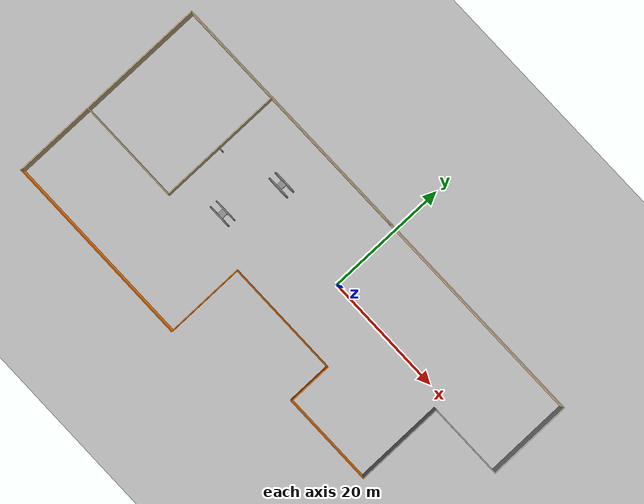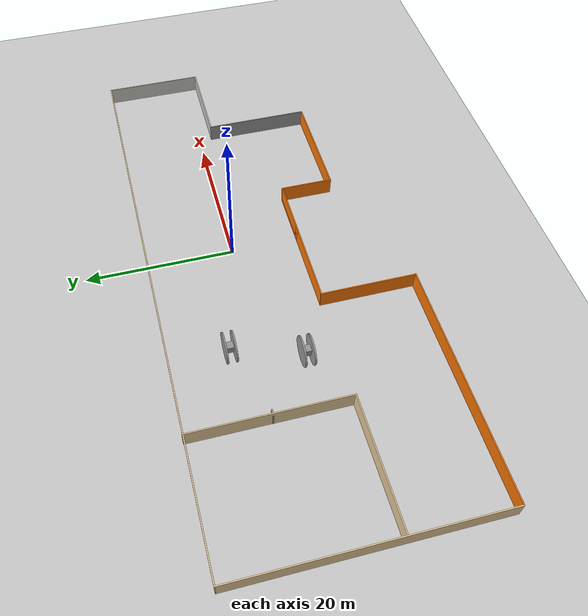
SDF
<sdf version="1.6">
 <world name="default">
  <plugin name="hello" filename="libwelcome.so"/>
  <light name="sun" type="directional">
   <pose>0 0 10 0 -0 0</pose>
   <diffuse>0.8 0.8 0.8 1</diffuse>
   <specular>0.2 0.2 0.2 1</specular>
   <attenuation>
    <range>1000</range>
    <constant>0.9</constant>
    <linear>0.01</linear>
    <quadratic>0.001</quadratic>
   </attenuation>
   <direction>-0.5 0.1 -0.9</direction>
  </light>
  <model name="ground_plane">
   <static>1</static>
   <link name="link">
    <collision name="collision">
     <geometry><plane><normal>0 0 1</normal><size>100 100</size></plane></geometry>
     <surface><friction><ode><mu>100</mu><mu2>50</mu2></ode></friction></surface>
    </collision>
    <visual name="visual">
     <cast_shadows>0</cast_shadows>
     <geometry><plane><normal>0 0 1</normal><size>100 100</size></plane></geometry>
     <material>
      <script><uri>file://media/materials/scripts/gazebo.material</uri><name>Gazebo/Grey</name></script>
     </material>
    </visual>
   </link>
  </model>
  <gravity>0 0 -9.8</gravity>
  <magnetic_field>6e-06 2.3e-05 -4.2e-05</magnetic_field>
  <atmosphere type="adiabatic"/>
  <physics name="default_physics" default="0" type="ode">
   <max_step_size>0.001</max_step_size>
   <real_time_factor>1</real_time_factor>
   <real_time_update_rate>1000</real_time_update_rate>
  </physics>
  <scene><ambient>0.4 0.4 0.4 1</ambient><background>0.7 0.7 0.7 1</background><shadows>1</shadows></scene>
  <spherical_coordinates>
   <surface_model>EARTH_WGS84</surface_model>
   <latitude_deg>0</latitude_deg>
   <longitude_deg>0</longitude_deg>
   <elevation>0</elevation>
   <heading_deg>0</heading_deg>
  </spherical_coordinates>
  <model name="Building">
   <pose>-4.0872 -5.12005 0 0 -0 0</pose>
   <link name="Door_0">
    <collision name="Door_0_Collision">
     <geometry><box><size>0.9 0.17 2</size></box></geometry>
     <pose>0 0 1 0 -0 0</pose>
    </collision>
    <visual name="Door_0_Visual">
     <pose>0 0 1 0 -0 0</pose>
     <geometry><box><size>0.9 0.17 2</size></box></geometry>
     <material>
      <script><uri>file://media/materials/scripts/gazebo.material</uri><name>Gazebo/Grey</name></script>
     </material>
    </visual>
    <pose>-21.8421 6.21903 0 0 -0 0</pose>
   </link>
   <link name="Wall_21">
    <collision name="Wall_21_Collision">
     <geometry><box><size>33.75 0.15 2.5</size></box></geometry>
     <pose>0 0 1.25 0 -0 0</pose>
    </collision>
    <visual name="Wall_21_Visual">
     <pose>0 0 1.25 0 -0 0</pose>
     <geometry><box><size>33.75 0.15 2.5</size></box></geometry>
     <material>
      <script><uri>file://media/materials/scripts/gazebo.material</uri><name>Gazebo/Grey</name></script>
      <ambient>0.921569 0.807843 0.615686 1</ambient>
     </material>
     <meta><layer>0</layer></meta>
    </visual>
    <pose>-39.2 -0.050046 0 0 0 -1.5708</pose>
   </link>
   <link name="Wall_22">
    <collision name="Wall_22_Collision">
     <geometry><box><size>32 0.15 2.5</size></box></geometry>
     <pose>0 0 1.25 0 -0 0</pose>
    </collision>
    <visual name="Wall_22_Visual">
     <pose>0 0 1.25 0 -0 0</pose>
     <geometry><box><size>32 0.15 2.5</size></box></geometry>
     <material>
      <script><uri>file://media/materials/scripts/gazebo.material</uri><name>Gazebo/Grey</name></script>
      <ambient>0.996078 0.47451 0.0196078 1</ambient>
     </material>
     <meta><layer>0</layer></meta>
    </visual>
    <pose>-23.275 -16.85 0 0 -0 0</pose>
   </link>
   <link name="Wall_23">
    <collision name="Wall_23_Collision">
     <geometry><box><size>13 0.15 2.5</size></box></geometry>
     <pose>0 0 1.25 0 -0 0</pose>
    </collision>
    <visual name="Wall_23_Visual">
     <pose>0 0 1.25 0 -0 0</pose>
     <geometry><box><size>13 0.15 2.5</size></box></geometry>
     <material>
      <script><uri>file://media/materials/scripts/gazebo.material</uri><name>Gazebo/Grey</name></script>
      <ambient>0.996078 0.47451 0.0196078 1</ambient>
     </material>
     <meta><layer>0</layer></meta>
    </visual>
    <pose>-7.35 -10.425 0 0 -0 1.5708</pose>
   </link>
   <link name="Wall_24">
    <pose>2.2 -4.00005 0 0 -0 0</pose>
    <visual name="Wall_24_Visual_0">
     <pose>-4.03379 0 1.25 0 -0 0</pose>
     <geometry><box><size>11.1824 0.15 2.5</size></box></geometry>
     <material>
      <script><uri>file://media/materials/scripts/gazebo.material</uri><name>Gazebo/Grey</name></script>
      <ambient>0.996078 0.47451 0.0196078 1</ambient>
     </material>
     <meta><layer>0</layer></meta>
    </visual>
    <collision name="Wall_24_Collision_0">
     <geometry><box><size>11.1824 0.15 2.5</size></box></geometry>
     <pose>-4.03379 0 1.25 0 -0 0</pose>
    </collision>
    <visual name="Wall_24_Visual_1">
     <pose>5.59121 0 0.25 0 -0 0</pose>
     <geometry><box><size>8.06759 0.15 0.5</size></box></geometry>
     <material>
      <script><uri>file://media/materials/scripts/gazebo.material</uri><name>Gazebo/Grey</name></script>
      <ambient>0.996078 0.47451 0.0196078 1</ambient>
     </material>
     <meta><layer>0</layer></meta>
    </visual>
    <collision name="Wall_24_Collision_1">
     <geometry><box><size>8.06759 0.15 0.5</size></box></geometry>
     <pose>5.59121 0 0.25 0 -0 0</pose>
    </collision>
    <visual name="Wall_24_Visual_2">
     <pose>5.99121 0 1.5 0 -0 0</pose>
     <geometry><box><size>7.26759 0.15 2</size></box></geometry>
     <material>
      <script><uri>file://media/materials/scripts/gazebo.material</uri><name>Gazebo/Grey</name></script>
      <ambient>0.996078 0.47451 0.0196078 1</ambient>
     </material>
     <meta><layer>0</layer></meta>
    </visual>
    <collision name="Wall_24_Collision_2">
     <geometry><box><size>7.26759 0.15 2</size></box></geometry>
     <pose>5.99121 0 1.5 0 -0 0</pose>
    </collision>
    <visual name="Wall_24_Visual_3">
     <pose>1.95741 0 1.9 0 -0 0</pose>
     <geometry><box><size>0.8 0.15 1.2</size></box></geometry>
     <material>
      <script><uri>file://media/materials/scripts/gazebo.material</uri><name>Gazebo/Grey</name></script>
      <ambient>0.996078 0.47451 0.0196078 1</ambient>
     </material>
     <meta><layer>0</layer></meta>
    </visual>
    <collision name="Wall_24_Collision_3">
     <geometry><box><size>0.8 0.15 1.2</size></box></geometry>
     <pose>1.95741 0 1.9 0 -0 0</pose>
    </collision>
   </link>
   <link name="Wall_25">
    <collision name="Wall_25_Collision">
     <geometry><box><size>7.25 0.15 2.5</size></box></geometry>
     <pose>0 0 1.25 0 -0 0</pose>
    </collision>
    <visual name="Wall_25_Visual">
     <pose>0 0 1.25 0 -0 0</pose>
     <geometry><box><size>7.25 0.15 2.5</size></box></geometry>
     <material>
      <script><uri>file://media/materials/scripts/gazebo.material</uri><name>Gazebo/Grey</name></script>
      <ambient>0.996078 0.47451 0.0196078 1</ambient>
     </material>
     <meta><layer>0</layer></meta>
    </visual>
    <pose>11.75 -7.55005 0 0 0 -1.5708</pose>
   </link>
   <link name="Wall_26">
    <collision name="Wall_26_Collision">
     <geometry><box><size>15.25 0.15 2.5</size></box></geometry>
     <pose>0 0 1.25 0 -0 0</pose>
    </collision>
    <visual name="Wall_26_Visual">
     <pose>0 0 1.25 0 -0 0</pose>
     <geometry><box><size>15.25 0.15 2.5</size></box></geometry>
     <material>
      <script><uri>file://media/materials/scripts/gazebo.material</uri><name>Gazebo/Grey</name></script>
      <ambient>0.996078 0.47451 0.0196078 1</ambient>
     </material>
     <meta><layer>0</layer></meta>
    </visual>
    <pose>19.3 -11.1 0 0 -0 0</pose>
   </link>
   <link name="Wall_27">
    <collision name="Wall_27_Collision">
     <geometry><box><size>14.5 0.15 2.5</size></box></geometry>
     <pose>0 0 1.25 0 -0 0</pose>
    </collision>
    <visual name="Wall_27_Visual">
     <pose>0 0 1.25 0 -0 0</pose>
     <geometry><box><size>14.5 0.15 2.5</size></box></geometry>
     <material>
      <script><uri>file://media/materials/scripts/gazebo.material</uri><name>Gazebo/Grey</name></script>
      <ambient>1 1 1 1</ambient>
     </material>
     <meta><layer>0</layer></meta>
    </visual>
    <pose>26.85 -3.92505 0 0 -0 1.5708</pose>
   </link>
   <link name="Wall_28">
    <collision name="Wall_28_Collision">
     <geometry><box><size>12.5 0.15 2.5</size></box></geometry>
     <pose>0 0 1.25 0 -0 0</pose>
    </collision>
    <visual name="Wall_28_Visual">
     <pose>0 0 1.25 0 -0 0</pose>
     <geometry><box><size>12.5 0.15 2.5</size></box></geometry>
     <material>
      <script><uri>file://media/materials/scripts/gazebo.material</uri><name>Gazebo/CeilingTiled</name></script>
      <ambient>1 1 1 1</ambient>
     </material>
     <meta><layer>0</layer></meta>
    </visual>
    <pose>33.025 3.24995 0 0 -0 0</pose>
   </link>
   <link name="Wall_29">
    <collision name="Wall_29_Collision">
     <geometry><box><size>13.75 0.15 2.5</size></box></geometry>
     <pose>0 0 1.25 0 -0 0</pose>
    </collision>
    <visual name="Wall_29_Visual">
     <pose>0 0 1.25 0 -0 0</pose>
     <geometry><box><size>13.75 0.15 2.5</size></box></geometry>
     <material>
      <script><uri>file://media/materials/scripts/gazebo.material</uri><name>Gazebo/CeilingTiled</name></script>
      <ambient>1 1 1 1</ambient>
     </material>
     <meta><layer>0</layer></meta>
    </visual>
    <pose>39.2 10.05 0 0 -0 1.5708</pose>
   </link>
   <link name="Wall_30">
    <pose>0 16.8 0 0 0 -3.14032</pose>
    <visual name="Wall_30_Visual_0">
     <pose>-21.194 0 1.25 0 -0 0</pose>
     <geometry><box><size>36.162 0.15 2.5</size></box></geometry>
     <material>
      <script><uri>file://media/materials/scripts/gazebo.material</uri><name>Gazebo/Grey</name></script>
      <ambient>0.921569 0.807843 0.615686 1</ambient>
     </material>
     <meta><layer>0</layer></meta>
    </visual>
    <collision name="Wall_30_Collision_0">
     <geometry><box><size>36.162 0.15 2.5</size></box></geometry>
     <pose>-21.194 0 1.25 0 -0 0</pose>
    </collision>
    <visual name="Wall_30_Visual_1">
     <pose>18.081 0 0.25 0 -0 0</pose>
     <geometry><box><size>42.388 0.15 0.5</size></box></geometry>
     <material>
      <script><uri>file://media/materials/scripts/gazebo.material</uri><name>Gazebo/Grey</name></script>
      <ambient>0.921569 0.807843 0.615686 1</ambient>
     </material>
     <meta><layer>0</layer></meta>
    </visual>
    <collision name="Wall_30_Collision_1">
     <geometry><box><size>42.388 0.15 0.5</size></box></geometry>
     <pose>18.081 0 0.25 0 -0 0</pose>
    </collision>
    <visual name="Wall_30_Visual_2">
     <pose>18.481 0 1.5 0 -0 0</pose>
     <geometry><box><size>41.588 0.15 2</size></box></geometry>
     <material>
      <script><uri>file://media/materials/scripts/gazebo.material</uri><name>Gazebo/Grey</name></script>
      <ambient>0.921569 0.807843 0.615686 1</ambient>
     </material>
     <meta><layer>0</layer></meta>
    </visual>
    <collision name="Wall_30_Collision_2">
     <geometry><box><size>41.588 0.15 2</size></box></geometry>
     <pose>18.481 0 1.5 0 -0 0</pose>
    </collision>
    <visual name="Wall_30_Visual_3">
     <pose>-2.71301 0 1.9 0 -0 0</pose>
     <geometry><box><size>0.8 0.15 1.2</size></box></geometry>
     <material>
      <script><uri>file://media/materials/scripts/gazebo.material</uri><name>Gazebo/Grey</name></script>
      <ambient>0.921569 0.807843 0.615686 1</ambient>
     </material>
     <meta><layer>0</layer></meta>
    </visual>
    <collision name="Wall_30_Collision_3">
     <geometry><box><size>0.8 0.15 1.2</size></box></geometry>
     <pose>-2.71301 0 1.9 0 -0 0</pose>
    </collision>
   </link>
   <link name="Wall_32">
    <collision name="Wall_32_Collision">
     <geometry><box><size>20.75 0.15 2.5</size></box></geometry>
     <pose>0 0 1.25 0 -0 0</pose>
    </collision>
    <visual name="Wall_32_Visual">
     <pose>0 0 1.25 0 -0 0</pose>
     <geometry><box><size>20.75 0.15 2.5</size></box></geometry>
     <material>
      <script><uri>file://media/materials/scripts/gazebo.material</uri><name>Gazebo/Grey</name></script>
      <ambient>0.921569 0.807843 0.615686 1</ambient>
     </material>
     <meta><layer>0</layer></meta>
    </visual>
    <pose>-22.186 6.54567 0 0 -0 1.5708</pose>
   </link>
   <link name="Wall_34">
    <collision name="Wall_34_Collision">
     <geometry><box><size>17 0.15 2.5</size></box></geometry>
     <pose>0 0 1.25 0 -0 0</pose>
    </collision>
    <visual name="Wall_34_Visual">
     <pose>0 0 1.25 0 -0 0</pose>
     <geometry><box><size>17 0.15 2.5</size></box></geometry>
     <material>
      <script><uri>file://media/materials/scripts/gazebo.material</uri><name>Gazebo/Grey</name></script>
      <ambient>0.921569 0.807843 0.615686 1</ambient>
     </material>
     <meta><layer>0</layer></meta>
    </visual>
    <pose>-30.611 -3.75433 0 0 -0 3.14159</pose>
   </link>
   <static>1</static>
  </model>
  <model name="Robot">
   <link name="link_0">
    <pose>1e-06 0 0 0 -0 0</pose>
    <inertial>
     <mass>1</mass>
     <inertia>
      <ixx>0.166667</ixx>
      <ixy>0</ixy>
      <ixz>0</ixz>
      <iyy>0.166667</iyy>
      <iyz>0</iyz>
      <izz>0.166667</izz>
     </inertia>
    </inertial>
    <visual name="visual">
     <geometry><box><size>1 1 1</size></box></geometry>
     <material>
      <lighting>1</lighting>
      <script><uri>file://media/materials/scripts/gazebo.material</uri><name>Gazebo/Grey</name></script>
      <shader type="pixel"><normal_map>__default__</normal_map></shader>
      <ambient>0.3 0.3 0.3 1</ambient>
      <diffuse>0.7 0.7 0.7 1</diffuse>
      <specular>0.01 0.01 0.01 1</specular>
      <emissive>0 0 0 1</emissive>
     </material>
    </visual>
    <collision name="collision">
     <geometry><box><size>1 1 1</size></box></geometry>
     <surface>
      <friction>
       <ode><mu>1</mu><mu2>1</mu2><fdir1>0 0 0</fdir1><slip1>0</slip1><slip2>0</slip2></ode>
       <torsional>
        <coefficient>1</coefficient>
        <patch_radius>0</patch_radius>
        <surface_radius>0</surface_radius>
        <use_patch_radius>1</use_patch_radius>
        <ode><slip>0</slip></ode>
       </torsional>
      </friction>
      <bounce><restitution_coefficient>0</restitution_coefficient><threshold>1e+06</threshold></bounce>
      <contact>
       <collide_without_contact>0</collide_without_contact>
       <collide_without_contact_bitmask>1</collide_without_contact_bitmask>
       <collide_bitmask>1</collide_bitmask>
       <ode>
        <soft_cfm>0</soft_cfm>
        <soft_erp>0.2</soft_erp>
        <kp>1e+13</kp>
        <kd>1</kd>
        <max_vel>0.01</max_vel>
        <min_depth>0</min_depth>
       </ode>
       <bullet>
        <split_impulse>1</split_impulse>
        <split_impulse_penetration_threshold>-0.01</split_impulse_penetration_threshold>
        <soft_cfm>0</soft_cfm>
        <soft_erp>0.2</soft_erp>
        <kp>1e+13</kp>
        <kd>1</kd>
       </bullet>
      </contact>
     </surface>
    </collision>
   </link>
   <link name="link_2">
    <pose>1e-06 -0.600193 0 1.5707 -0 0</pose>
    <inertial>
     <mass>1</mass>
     <inertia><ixx>0.145833</ixx><ixy>0</ixy><ixz>0</ixz><iyy>0.145833</iyy><iyz>0</iyz><izz>0.125</izz></inertia>
    </inertial>
    <visual name="visual">
     <geometry><cylinder><radius>2</radius><length>0.2</length></cylinder></geometry>
     <material>
      <lighting>1</lighting>
      <script><uri>file://media/materials/scripts/gazebo.material</uri><name>Gazebo/Grey</name></script>
      <shader type="pixel"><normal_map>__default__</normal_map></shader>
      <ambient>0.3 0.3 0.3 1</ambient>
      <diffuse>0.7 0.7 0.7 1</diffuse>
      <specular>0.01 0.01 0.01 1</specular>
      <emissive>0 0 0 1</emissive>
     </material>
    </visual>
    <collision name="collision">
     <geometry><cylinder><radius>2</radius><length>0.2</length></cylinder></geometry>
     <surface>
      <friction>
       <ode><mu>1</mu><mu2>1</mu2><fdir1>0 0 0</fdir1><slip1>0</slip1><slip2>0</slip2></ode>
       <torsional>
        <coefficient>1</coefficient>
        <patch_radius>0</patch_radius>
        <surface_radius>0</surface_radius>
        <use_patch_radius>1</use_patch_radius>
        <ode><slip>0</slip></ode>
       </torsional>
      </friction>
      <bounce><restitution_coefficient>0</restitution_coefficient><threshold>1e+06</threshold></bounce>
      <contact>
       <collide_without_contact>0</collide_without_contact>
       <collide_without_contact_bitmask>1</collide_without_contact_bitmask>
       <collide_bitmask>1</collide_bitmask>
       <ode>
        <soft_cfm>0</soft_cfm>
        <soft_erp>0.2</soft_erp>
        <kp>1e+13</kp>
        <kd>1</kd>
        <max_vel>0.01</max_vel>
        <min_depth>0</min_depth>
       </ode>
       <bullet>
        <split_impulse>1</split_impulse>
        <split_impulse_penetration_threshold>-0.01</split_impulse_penetration_threshold>
        <soft_cfm>0</soft_cfm>
        <soft_erp>0.2</soft_erp>
        <kp>1e+13</kp>
        <kd>1</kd>
       </bullet>
      </contact>
     </surface>
    </collision>
   </link>
   <link name="link_2_clone">
    <pose>1e-06 0.600193 0 1.5707 -0 0</pose>
    <inertial>
     <mass>1</mass>
     <inertia><ixx>0.145833</ixx><ixy>0</ixy><ixz>0</ixz><iyy>0.145833</iyy><iyz>0</iyz><izz>0.125</izz></inertia>
    </inertial>
    <visual name="visual">
     <geometry><cylinder><radius>2</radius><length>0.2</length></cylinder></geometry>
     <material>
      <lighting>1</lighting>
      <script><uri>file://media/materials/scripts/gazebo.material</uri><name>Gazebo/Grey</name></script>
      <shader type="pixel"><normal_map>__default__</normal_map></shader>
      <ambient>0.3 0.3 0.3 1</ambient>
      <diffuse>0.7 0.7 0.7 1</diffuse>
      <specular>0.01 0.01 0.01 1</specular>
      <emissive>0 0 0 1</emissive>
     </material>
    </visual>
    <collision name="collision">
     <geometry><cylinder><radius>2</radius><length>0.2</length></cylinder></geometry>
     <surface>
      <friction>
       <ode><mu>1</mu><mu2>1</mu2><fdir1>0 0 0</fdir1><slip1>0</slip1><slip2>0</slip2></ode>
       <torsional>
        <coefficient>1</coefficient>
        <patch_radius>0</patch_radius>
        <surface_radius>0</surface_radius>
        <use_patch_radius>1</use_patch_radius>
        <ode><slip>0</slip></ode>
       </torsional>
      </friction>
      <bounce><restitution_coefficient>0</restitution_coefficient><threshold>1e+06</threshold></bounce>
      <contact>
       <collide_without_contact>0</collide_without_contact>
       <collide_without_contact_bitmask>1</collide_without_contact_bitmask>
       <collide_bitmask>1</collide_bitmask>
       <ode>
        <soft_cfm>0</soft_cfm>
        <soft_erp>0.2</soft_erp>
        <kp>1e+13</kp>
        <kd>1</kd>
        <max_vel>0.01</max_vel>
        <min_depth>0</min_depth>
       </ode>
       <bullet>
        <split_impulse>1</split_impulse>
        <split_impulse_penetration_threshold>-0.01</split_impulse_penetration_threshold>
        <soft_cfm>0</soft_cfm>
        <soft_erp>0.2</soft_erp>
        <kp>1e+13</kp>
        <kd>1</kd>
       </bullet>
      </contact>
     </surface>
    </collision>
   </link>
   <joint name="link_0_JOINT_0" type="revolute">
    <parent>link_0</parent>
    <child>link_2</child>
    <axis>
     <xyz>0 0 1</xyz>
     <use_parent_model_frame>0</use_parent_model_frame>
     <limit>
      <lower>-1.79769e+308</lower>
      <upper>1.79769e+308</upper>
      <effort>-1</effort>
      <velocity>-1</velocity>
     </limit>
     <dynamics>
      <spring_reference>0</spring_reference>
      <spring_stiffness>0</spring_stiffness>
      <damping>0</damping>
     </dynamics>
    </axis>
    <physics>
     <ode><limit><cfm>0</cfm><erp>0.2</erp></limit><suspension><cfm>0</cfm><erp>0.2</erp></suspension></ode>
    </physics>
   </joint>
   <joint name="link_0_JOINT_1" type="revolute">
    <parent>link_0</parent>
    <child>link_2_clone</child>
    <axis>
     <xyz>0 0 1</xyz>
     <use_parent_model_frame>0</use_parent_model_frame>
     <limit>
      <lower>-1.79769e+308</lower>
      <upper>1.79769e+308</upper>
      <effort>-1</effort>
      <velocity>-1</velocity>
     </limit>
     <dynamics>
      <spring_reference>0</spring_reference>
      <spring_stiffness>0</spring_stiffness>
      <damping>0</damping>
     </dynamics>
    </axis>
    <physics>
     <ode><limit><cfm>0</cfm><erp>0.2</erp></limit><suspension><cfm>0</cfm><erp>0.2</erp></suspension></ode>
    </physics>
   </joint>
   <static>0</static>
   <pose>-18.8464 -5.05977 2.00001 1e-06 -0 0</pose>
  </model>
  <model name="Robot_clone">
   <link name="link_0">
    <pose>1e-06 0 0 0 -0 0</pose>
    <inertial>
     <mass>1</mass>
     <inertia>
      <ixx>0.166667</ixx>
      <ixy>0</ixy>
      <ixz>0</ixz>
      <iyy>0.166667</iyy>
      <iyz>0</iyz>
      <izz>0.166667</izz>
     </inertia>
    </inertial>
    <visual name="visual">
     <geometry><box><size>1 1 1</size></box></geometry>
     <material>
      <lighting>1</lighting>
      <script><uri>file://media/materials/scripts/gazebo.material</uri><name>Gazebo/Grey</name></script>
      <shader type="pixel"><normal_map>__default__</normal_map></shader>
      <ambient>0.3 0.3 0.3 1</ambient>
      <diffuse>0.7 0.7 0.7 1</diffuse>
      <specular>0.01 0.01 0.01 1</specular>
      <emissive>0 0 0 1</emissive>
     </material>
    </visual>
    <collision name="collision">
     <geometry><box><size>1 1 1</size></box></geometry>
     <surface>
      <friction>
       <ode><mu>1</mu><mu2>1</mu2><fdir1>0 0 0</fdir1><slip1>0</slip1><slip2>0</slip2></ode>
       <torsional>
        <coefficient>1</coefficient>
        <patch_radius>0</patch_radius>
        <surface_radius>0</surface_radius>
        <use_patch_radius>1</use_patch_radius>
        <ode><slip>0</slip></ode>
       </torsional>
      </friction>
      <bounce><restitution_coefficient>0</restitution_coefficient><threshold>1e+06</threshold></bounce>
      <contact>
       <collide_without_contact>0</collide_without_contact>
       <collide_without_contact_bitmask>1</collide_without_contact_bitmask>
       <collide_bitmask>1</collide_bitmask>
       <ode>
        <soft_cfm>0</soft_cfm>
        <soft_erp>0.2</soft_erp>
        <kp>1e+13</kp>
        <kd>1</kd>
        <max_vel>0.01</max_vel>
        <min_depth>0</min_depth>
       </ode>
       <bullet>
        <split_impulse>1</split_impulse>
        <split_impulse_penetration_threshold>-0.01</split_impulse_penetration_threshold>
        <soft_cfm>0</soft_cfm>
        <soft_erp>0.2</soft_erp>
        <kp>1e+13</kp>
        <kd>1</kd>
       </bullet>
      </contact>
     </surface>
    </collision>
   </link>
   <link name="link_2">
    <pose>1e-06 -0.600193 0 1.5707 -0 0</pose>
    <inertial>
     <mass>1</mass>
     <inertia><ixx>0.145833</ixx><ixy>0</ixy><ixz>0</ixz><iyy>0.145833</iyy><iyz>0</iyz><izz>0.125</izz></inertia>
    </inertial>
    <visual name="visual">
     <geometry><cylinder><radius>2</radius><length>0.2</length></cylinder></geometry>
     <material>
      <lighting>1</lighting>
      <script><uri>file://media/materials/scripts/gazebo.material</uri><name>Gazebo/Grey</name></script>
      <shader type="pixel"><normal_map>__default__</normal_map></shader>
      <ambient>0.3 0.3 0.3 1</ambient>
      <diffuse>0.7 0.7 0.7 1</diffuse>
      <specular>0.01 0.01 0.01 1</specular>
      <emissive>0 0 0 1</emissive>
     </material>
    </visual>
    <collision name="collision">
     <geometry><cylinder><radius>2</radius><length>0.2</length></cylinder></geometry>
     <surface>
      <friction>
       <ode><mu>1</mu><mu2>1</mu2><fdir1>0 0 0</fdir1><slip1>0</slip1><slip2>0</slip2></ode>
       <torsional>
        <coefficient>1</coefficient>
        <patch_radius>0</patch_radius>
        <surface_radius>0</surface_radius>
        <use_patch_radius>1</use_patch_radius>
        <ode><slip>0</slip></ode>
       </torsional>
      </friction>
      <bounce><restitution_coefficient>0</restitution_coefficient><threshold>1e+06</threshold></bounce>
      <contact>
       <collide_without_contact>0</collide_without_contact>
       <collide_without_contact_bitmask>1</collide_without_contact_bitmask>
       <collide_bitmask>1</collide_bitmask>
       <ode>
        <soft_cfm>0</soft_cfm>
        <soft_erp>0.2</soft_erp>
        <kp>1e+13</kp>
        <kd>1</kd>
        <max_vel>0.01</max_vel>
        <min_depth>0</min_depth>
       </ode>
       <bullet>
        <split_impulse>1</split_impulse>
        <split_impulse_penetration_threshold>-0.01</split_impulse_penetration_threshold>
        <soft_cfm>0</soft_cfm>
        <soft_erp>0.2</soft_erp>
        <kp>1e+13</kp>
        <kd>1</kd>
       </bullet>
      </contact>
     </surface>
    </collision>
   </link>
   <link name="link_2_clone">
    <pose>1e-06 0.600193 0 1.5707 -0 0</pose>
    <inertial>
     <mass>1</mass>
     <inertia><ixx>0.145833</ixx><ixy>0</ixy><ixz>0</ixz><iyy>0.145833</iyy><iyz>0</iyz><izz>0.125</izz></inertia>
    </inertial>
    <visual name="visual">
     <geometry><cylinder><radius>2</radius><length>0.2</length></cylinder></geometry>
     <material>
      <lighting>1</lighting>
      <script><uri>file://media/materials/scripts/gazebo.material</uri><name>Gazebo/Grey</name></script>
      <shader type="pixel"><normal_map>__default__</normal_map></shader>
      <ambient>0.3 0.3 0.3 1</ambient>
      <diffuse>0.7 0.7 0.7 1</diffuse>
      <specular>0.01 0.01 0.01 1</specular>
      <emissive>0 0 0 1</emissive>
     </material>
    </visual>
    <collision name="collision">
     <geometry><cylinder><radius>2</radius><length>0.2</length></cylinder></geometry>
     <surface>
      <friction>
       <ode><mu>1</mu><mu2>1</mu2><fdir1>0 0 0</fdir1><slip1>0</slip1><slip2>0</slip2></ode>
       <torsional>
        <coefficient>1</coefficient>
        <patch_radius>0</patch_radius>
        <surface_radius>0</surface_radius>
        <use_patch_radius>1</use_patch_radius>
        <ode><slip>0</slip></ode>
       </torsional>
      </friction>
      <bounce><restitution_coefficient>0</restitution_coefficient><threshold>1e+06</threshold></bounce>
      <contact>
       <collide_without_contact>0</collide_without_contact>
       <collide_without_contact_bitmask>1</collide_without_contact_bitmask>
       <collide_bitmask>1</collide_bitmask>
       <ode>
        <soft_cfm>0</soft_cfm>
        <soft_erp>0.2</soft_erp>
        <kp>1e+13</kp>
        <kd>1</kd>
        <max_vel>0.01</max_vel>
        <min_depth>0</min_depth>
       </ode>
       <bullet>
        <split_impulse>1</split_impulse>
        <split_impulse_penetration_threshold>-0.01</split_impulse_penetration_threshold>
        <soft_cfm>0</soft_cfm>
        <soft_erp>0.2</soft_erp>
        <kp>1e+13</kp>
        <kd>1</kd>
       </bullet>
      </contact>
     </surface>
    </collision>
   </link>
   <joint name="link_0_JOINT_0" type="revolute">
    <parent>link_0</parent>
    <child>link_2</child>
    <axis>
     <xyz>0 0 1</xyz>
     <use_parent_model_frame>0</use_parent_model_frame>
     <limit>
      <lower>-1.79769e+308</lower>
      <upper>1.79769e+308</upper>
      <effort>-1</effort>
      <velocity>-1</velocity>
     </limit>
     <dynamics>
      <spring_reference>0</spring_reference>
      <spring_stiffness>0</spring_stiffness>
      <damping>0</damping>
     </dynamics>
    </axis>
    <physics>
     <ode><limit><cfm>0</cfm><erp>0.2</erp></limit><suspension><cfm>0</cfm><erp>0.2</erp></suspension></ode>
    </physics>
   </joint>
   <joint name="link_0_JOINT_1" type="revolute">
    <parent>link_0</parent>
    <child>link_2_clone</child>
    <axis>
     <xyz>0 0 1</xyz>
     <use_parent_model_frame>0</use_parent_model_frame>
     <limit>
      <lower>-1.79769e+308</lower>
      <upper>1.79769e+308</upper>
      <effort>-1</effort>
      <velocity>-1</velocity>
     </limit>
     <dynamics>
      <spring_reference>0</spring_reference>
      <spring_stiffness>0</spring_stiffness>
      <damping>0</damping>
     </dynamics>
    </axis>
    <physics>
     <ode><limit><cfm>0</cfm><erp>0.2</erp></limit><suspension><cfm>0</cfm><erp>0.2</erp></suspension></ode>
    </physics>
   </joint>
   <static>0</static>
   <pose>-16.0675 3.95754 2.00001 1e-06 -0 0</pose>
  </model>
 </world>
</sdf>
